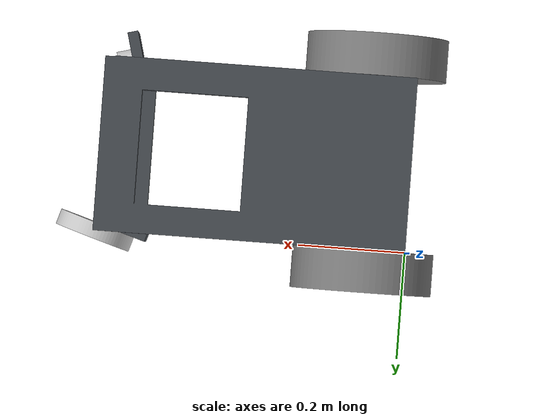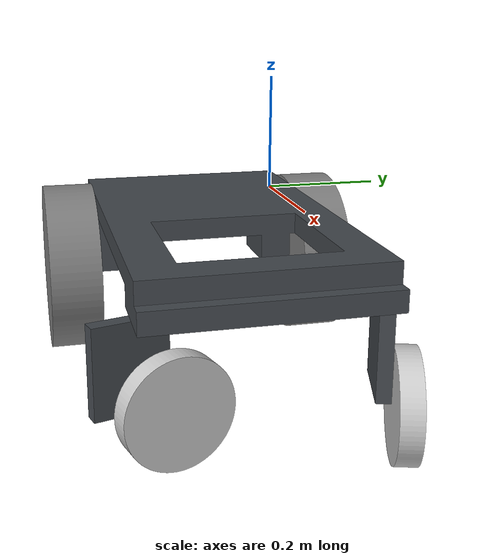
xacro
<?xml version="1.0"?>
<robot xmlns:xacro="http://www.ros.org/wiki/xacro"  name="robot">

    <xacro:arg name="use_ros2_control" default="true"/>
    <xacro:arg name="sim_mode" default="false"/>

    <xacro:include filename="rmp220.urdf.xacro" />

</robot>

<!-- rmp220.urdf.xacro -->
<robot name="onshape">
    <link name="frame">
        <visual>
            <origin xyz="0 0 0" rpy="0 -0 0" />
            <geometry>
                <mesh filename="file://$(find articubot_one)/description/mesh/frame.stl"/>
            </geometry>
            <material name="frame_material">
                <color rgba="0.26274509803921569651 0.28235294117647058432 0.30196078431372547213 1.0"/>
            </material>
        </visual>
        <collision>
            <origin xyz="0 0 0" rpy="0 -0 0" />
            <geometry>
                <mesh filename="file://$(find articubot_one)/description/mesh/frame.stl"/>
            </geometry>
        </collision>
        <inertial>
            <origin xyz="0.26525382311209211306 -0.16550843449471855373 7.0156077565831264286e-05" rpy="0 0 0"/>
            <mass value="17.760400000000000631" />
            <inertia ixx="0.22388833808870678421" ixy="0.001352207977297834908" ixz="-0.011778303736402324919" iyy="0.66998204501760494356" iyz="0.00013481649061958977292" izz="0.86622765126859035956" />
        </inertial>
    </link>

    <link name="wheelbl">
        <visual>
            <origin xyz="-0.075000000000000011102 0.05999999999999999778 -5.5511151231257827021e-17" rpy="-1.570796326794896558 -0 0" />
            <geometry>
                <mesh filename="file://$(find articubot_one)/description/mesh/wheelbl.stl"/>
            </geometry>
            <material name="wheelbl_material">
                <color rgba="0.49803921568627451677 0.49803921568627451677 0.49803921568627451677 1.0"/>
            </material>
        </visual>
        <collision>
            <origin xyz="-0.075000000000000011102 0.05999999999999999778 -5.5511151231257827021e-17" rpy="-1.570796326794896558 -0 0" />
            <geometry>
                <mesh filename="file://$(find articubot_one)/description/mesh/wheelbl.stl"/>
            </geometry>
        </collision>
        <inertial>
            <origin xyz="1.3877787807814456755e-17 -6.9388939039072283776e-18 -0.04000000000000001471" rpy="0 0 0"/>
            <mass value="5.496530506720703535" />
            <inertia ixx="0.027975050058163912492" ixy="0" ixz="0" iyy="0.027975050058163912492" iyz="0" izz="0.050087134242492406533" />
        </inertial>
    </link>

    <joint name="wheelBL" type="revolute">
        <origin xyz="0.075000000000000080491 0 -0.10000000000000006106" rpy="-1.570796326794896558 -0 3.141592653589793116" />
        <parent link="frame" />
        <child link="wheelbl" />
        <axis xyz="0 0 1"/>
        <limit effort="1" velocity="20" />
        <joint_properties friction="0.0"/>
    </joint>

    <link name="wheelbr">
        <visual>
            <origin xyz="-0.075000000000000011102 -0.060000000000000011657 0.33000000000000001554" rpy="1.570796326794896558 -0 5.5511151231257827021e-17" />
            <geometry>
                <mesh filename="file://$(find articubot_one)/description/mesh/wheelbr.stl"/>
            </geometry>
            <material name="wheelbr_material">
                <color rgba="0.49803921568627451677 0.49803921568627451677 0.49803921568627451677 1.0"/>
            </material>
        </visual>
        <collision>
            <origin xyz="-0.075000000000000011102 -0.060000000000000011657 0.33000000000000001554" rpy="1.570796326794896558 -0 5.5511151231257827021e-17" />
            <geometry>
                <mesh filename="file://$(find articubot_one)/description/mesh/wheelbr.stl"/>
            </geometry>
        </collision>
        <inertial>
            <origin xyz="1.3877787807814456755e-17 1.3877787807814456755e-17 -0.039999999999999980016" rpy="0 0 0"/>
            <mass value="5.496530506720703535" />
            <inertia ixx="0.027975050058163919431" ixy="3.1058544689614911883e-18" ixz="0" iyy="0.027975050058163933309" iyz="0" izz="0.050087134242492420411" />
        </inertial>
    </link>

    <joint name="wheelBR" type="revolute">
        <origin xyz="0.07500000000000002498 -0.33000000000000001554 -0.10000000000000003331" rpy="1.570796326794896558 -0.75620673034660657041 3.141592653589793116" />
        <parent link="frame" />
        <child link="wheelbr" />
        <axis xyz="0 0 1"/>
        <limit effort="1" velocity="20" />
        <joint_properties friction="0.0"/>
    </joint>

    <link name="mount_wheelfr">
        <visual>
            <origin xyz="-0.54000000000000025757 0.33000000000000001554 0.02999999999999999889" rpy="0 -0 0" />
            <geometry>
                <mesh filename="file://$(find articubot_one)/description/mesh/mount_wheelfr.stl"/>
            </geometry>
            <material name="mount_wheelfr_material">
                <color rgba="0.26274509803921569651 0.28235294117647058432 0.30196078431372547213 1.0"/>
            </material>
        </visual>
        <collision>
            <origin xyz="-0.54000000000000025757 0.33000000000000001554 0.02999999999999999889" rpy="0 -0 0" />
            <geometry>
                <mesh filename="file://$(find articubot_one)/description/mesh/mount_wheelfr.stl"/>
            </geometry>
        </collision>
        <inertial>
            <origin xyz="-1.1102230246251565404e-16 0.0099999999999999533706 -0.05999999999999999778" rpy="0 0 0"/>
            <mass value="0.67200000000000004174" />
            <inertia ixx="0.00082879999999999824471" ixy="0" ixz="0" iyy="0.0013664000000000000364" iyz="0" izz="0.00058239999999999843543" />
        </inertial>
    </link>

    <link name="wheelfr">
        <visual>
            <origin xyz="-0.59000000000000007994 -0.13999999999999998557 0.33000000000000001554" rpy="1.570796326794896558 2.5348653996767595351e-17 2.7755575615628913511e-17" />
            <geometry>
                <mesh filename="file://$(find articubot_one)/description/mesh/wheelfr.stl"/>
            </geometry>
            <material name="wheelfr_material">
                <color rgba="0.80000000000000004441 0.80000000000000004441 0.80000000000000004441 1.0"/>
            </material>
        </visual>
        <collision>
            <origin xyz="-0.59000000000000007994 -0.13999999999999998557 0.33000000000000001554" rpy="1.570796326794896558 2.5348653996767595351e-17 2.7755575615628913511e-17" />
            <geometry>
                <mesh filename="file://$(find articubot_one)/description/mesh/wheelfr.stl"/>
            </geometry>
        </collision>
        <inertial>
            <origin xyz="0 2.7755575615628913511e-17 -0.014999999999999959546" rpy="0 0 0"/>
            <mass value="0.63617251235193172931" />
            <inertia ixx="0.0009423305339212979196" ixy="2.6154926389168551271e-20" ixz="-7.3548063292622046905e-20" iyy="0.00094233053392129770276" iyz="1.1550594056633111601e-20" izz="0.0017892351909898059157" />
        </inertial>
    </link>

    <joint name="wheelFR" type="revolute">
        <origin xyz="0.049999999999999877875 5.5511151231257827021e-17 -0.1199999999999999678" rpy="1.570796326794896558 -0.18362507183038750957 -3.141592653589793116" />
        <parent link="mount_wheelfr" />
        <child link="wheelfr" />
        <axis xyz="0 0 1"/>
        <limit effort="1" velocity="20" />
        <joint_properties friction="0.0"/>
    </joint>

    <joint name="wheelFRmount" type="revolute">
        <origin xyz="0.54000000000000025757 -0.33000000000000007105 -0.02999999999999999889" rpy="0 -0 1.8319708278576181115" />
        <parent link="frame" />
        <child link="mount_wheelfr" />
        <axis xyz="0 0 1"/>
        <limit effort="1" velocity="20" />
        <joint_properties friction="0.0"/>
    </joint>

    <link name="mount_wheelfl">
        <visual>
            <origin xyz="-0.54000000000000003553 2.7755575615628913511e-17 0.02999999999999999889" rpy="0 -0 0" />
            <geometry>
                <mesh filename="file://$(find articubot_one)/description/mesh/mount_wheelfl.stl"/>
            </geometry>
            <material name="mount_wheelfl_material">
                <color rgba="0.26274509803921569651 0.28235294117647058432 0.30196078431372547213 1.0"/>
            </material>
        </visual>
        <collision>
            <origin xyz="-0.54000000000000003553 2.7755575615628913511e-17 0.02999999999999999889" rpy="0 -0 0" />
            <geometry>
                <mesh filename="file://$(find articubot_one)/description/mesh/mount_wheelfl.stl"/>
            </geometry>
        </collision>
        <inertial>
            <origin xyz="1.1102230246251565404e-16 -0.0099999999999999689831 -0.05999999999999999778" rpy="0 0 0"/>
            <mass value="0.67199999999999993072" />
            <inertia ixx="0.00082879999999999943733" ixy="0" ixz="0" iyy="0.0013664000000000006869" iyz="0" izz="0.00058240000000000125436" />
        </inertial>
    </link>

    <link name="wheelfl">
        <visual>
            <origin xyz="-0.59000000000000030198 0.14000000000000017986 2.7755575615628913511e-17" rpy="-1.570796326794896558 5.079693904925191655e-18 0" />
            <geometry>
                <mesh filename="file://$(find articubot_one)/description/mesh/wheelfl.stl"/>
            </geometry>
            <material name="wheelfl_material">
                <color rgba="0.80000000000000004441 0.80000000000000004441 0.80000000000000004441 1.0"/>
            </material>
        </visual>
        <collision>
            <origin xyz="-0.59000000000000030198 0.14000000000000017986 2.7755575615628913511e-17" rpy="-1.570796326794896558 5.079693904925191655e-18 0" />
            <geometry>
                <mesh filename="file://$(find articubot_one)/description/mesh/wheelfl.stl"/>
            </geometry>
        </collision>
        <inertial>
            <origin xyz="-2.2204460492503130808e-16 2.2204460492503130808e-16 -0.014999999999999959546" rpy="0 0 0"/>
            <mass value="0.63617251235193172931" />
            <inertia ixx="0.0009423305339212979196" ixy="2.6154926389168542243e-20" ixz="-4.7867506695849182892e-21" iyy="0.00094233053392129748592" iyz="-5.3794339452346682701e-21" izz="0.0017892351909898059157" />
        </inertial>
    </link>

    <joint name="wheelFL" type="revolute">
        <origin xyz="0.050000000000000044409 -2.7755575615628913511e-17 -0.12000000000000002331" rpy="1.570796326794896558 -1.3538244723139341019 3.2232926716170811866e-17" />
        <parent link="mount_wheelfl" />
        <child link="wheelfl" />
        <axis xyz="0 0 1"/>
        <limit effort="1" velocity="20" />
        <joint_properties friction="0.0"/>
    </joint>

    <joint name="wheelFLmount" type="revolute">
        <origin xyz="0.53999999999999970246 0 -0.030000000000000002359" rpy="0 -0 -0.29973037667082597091" />
        <parent link="frame" />
        <child link="mount_wheelfl" />
        <axis xyz="0 0 1"/>
        <limit effort="1" velocity="20" />
        <joint_properties friction="0.0"/>
    </joint>

</robot>
